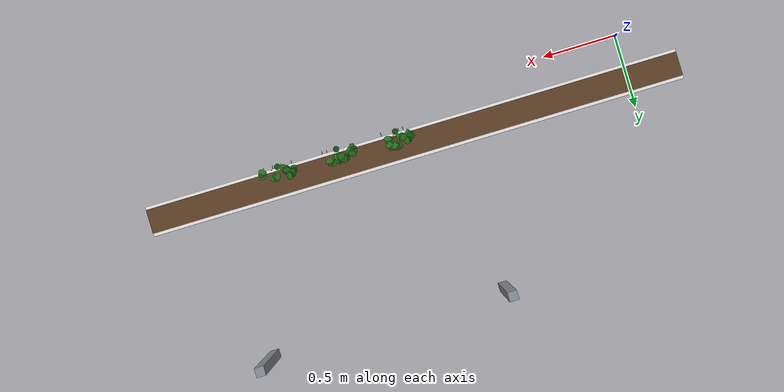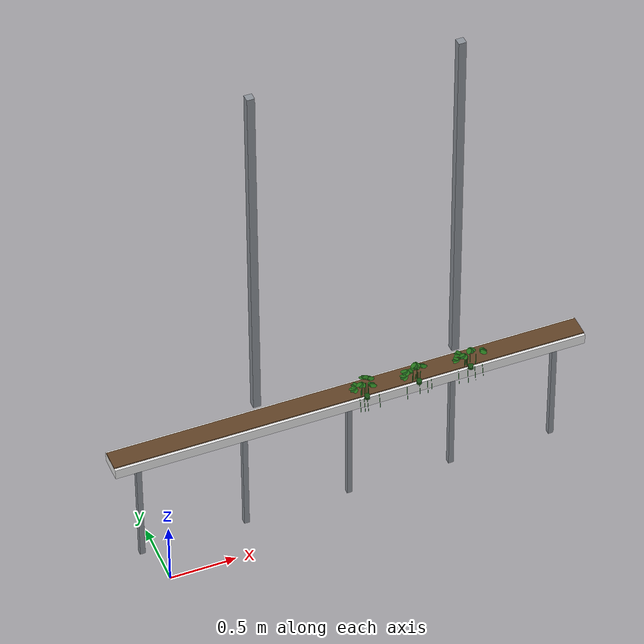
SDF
<sdf version="1.8">
 <world name="strawberry_greenhouse">
  <model name="post_1b">
   <static>true</static>
   <pose>1.2000 1.4000 1.5000 0.0000 0.0000 0.0000</pose>
   <link name="link">
    <visual name="v">
     <geometry><box><size>0.0600 0.0600 3.0000</size></box></geometry>
     <material>
      <ambient>0.550 0.570 0.600 1</ambient>
      <diffuse>0.550 0.570 0.600 1</diffuse>
      <specular>0.1 0.1 0.1 1</specular>
     </material>
    </visual>
   </link>
  </model>
  <model name="post_2b">
   <static>true</static>
   <pose>2.8000 1.4000 1.5000 0.0000 0.0000 0.0000</pose>
   <link name="link">
    <visual name="v">
     <geometry><box><size>0.0600 0.0600 3.0000</size></box></geometry>
     <material>
      <ambient>0.550 0.570 0.600 1</ambient>
      <diffuse>0.550 0.570 0.600 1</diffuse>
      <specular>0.1 0.1 0.1 1</specular>
     </material>
    </visual>
   </link>
  </model>
  <model name="gutter">
   <static>true</static>
   <pose>1.5000 0.3150 0.9600 0.0000 0.0000 0.0000</pose>
   <link name="link">
    <visual name="gutter">
     <geometry><box><size>3.6000 0.2000 0.0800</size></box></geometry>
     <material>
      <ambient>0.920 0.920 0.920 1</ambient>
      <diffuse>0.920 0.920 0.920 1</diffuse>
      <specular>0.1 0.1 0.1 1</specular>
     </material>
    </visual>
    <collision name="gutter_collision">
     <geometry><box><size>3.6000 0.2000 0.0800</size></box></geometry>
     <surface><friction><ode><mu>1.0</mu><mu2>1.0</mu2></ode></friction></surface>
    </collision>
    <visual name="substrate">
     <pose>0.0000 0.0000 0.0450 0.0000 0.0000 0.0000</pose>
     <geometry><box><size>3.6000 0.1600 0.0100</size></box></geometry>
     <material>
      <ambient>0.380 0.260 0.150 1</ambient>
      <diffuse>0.380 0.260 0.150 1</diffuse>
      <specular>0.1 0.1 0.1 1</specular>
     </material>
    </visual>
    <visual name="leg_0">
     <pose>-1.6000 0.0000 -0.5000 0.0000 0.0000 0.0000</pose>
     <geometry><box><size>0.0400 0.0400 0.9200</size></box></geometry>
     <material>
      <ambient>0.550 0.570 0.600 1</ambient>
      <diffuse>0.550 0.570 0.600 1</diffuse>
      <specular>0.1 0.1 0.1 1</specular>
     </material>
    </visual>
    <visual name="leg_1">
     <pose>-0.8000 0.0000 -0.5000 0.0000 0.0000 0.0000</pose>
     <geometry><box><size>0.0400 0.0400 0.9200</size></box></geometry>
     <material>
      <ambient>0.550 0.570 0.600 1</ambient>
      <diffuse>0.550 0.570 0.600 1</diffuse>
      <specular>0.1 0.1 0.1 1</specular>
     </material>
    </visual>
    <visual name="leg_2">
     <pose>0.0000 0.0000 -0.5000 0.0000 0.0000 0.0000</pose>
     <geometry><box><size>0.0400 0.0400 0.9200</size></box></geometry>
     <material>
      <ambient>0.550 0.570 0.600 1</ambient>
      <diffuse>0.550 0.570 0.600 1</diffuse>
      <specular>0.1 0.1 0.1 1</specular>
     </material>
    </visual>
    <visual name="leg_3">
     <pose>0.8000 0.0000 -0.5000 0.0000 0.0000 0.0000</pose>
     <geometry><box><size>0.0400 0.0400 0.9200</size></box></geometry>
     <material>
      <ambient>0.550 0.570 0.600 1</ambient>
      <diffuse>0.550 0.570 0.600 1</diffuse>
      <specular>0.1 0.1 0.1 1</specular>
     </material>
    </visual>
    <visual name="leg_4">
     <pose>1.6000 0.0000 -0.5000 0.0000 0.0000 0.0000</pose>
     <geometry><box><size>0.0400 0.0400 0.9200</size></box></geometry>
     <material>
      <ambient>0.550 0.570 0.600 1</ambient>
      <diffuse>0.550 0.570 0.600 1</diffuse>
      <specular>0.1 0.1 0.1 1</specular>
     </material>
    </visual>
   </link>
  </model>
  <model name="plant_3">
   <static>true</static>
   <pose>1.6000 0.2100 1.0200 0.0000 0.0000 0.0000</pose>
   <link name="crown">
    <inertial>
     <mass>0.3</mass>
     <inertia>
      <ixx>1.250e-04</ixx>
      <iyy>1.250e-04</iyy>
      <izz>1.250e-04</izz>
      <ixy>0</ixy>
      <ixz>0</ixz>
      <iyz>0</iyz>
     </inertia>
    </inertial>
    <visual name="crown">
     <geometry><cylinder><radius>0.0200</radius><length>0.0300</length></cylinder></geometry>
     <material>
      <ambient>0.080 0.320 0.070 1</ambient>
      <diffuse>0.080 0.320 0.070 1</diffuse>
      <specular>0.1 0.1 0.1 1</specular>
     </material>
    </visual>
    <visual name="petiole_0">
     <pose>-0.0348 0.0270 0.0298 0.0000 0.0000 0.0000</pose>
     <geometry><cylinder><radius>0.0020</radius><length>0.0595</length></cylinder></geometry>
     <material>
      <ambient>0.100 0.500 0.120 1</ambient>
      <diffuse>0.100 0.500 0.120 1</diffuse>
      <specular>0.1 0.1 0.1 1</specular>
     </material>
    </visual>
    <visual name="leaf_0_0">
     <pose>-0.0894 0.0571 0.0595 0.2000 0.1500 2.9899</pose>
     <geometry><ellipsoid><radii>0.0280 0.0180 0.0030</radii></ellipsoid></geometry>
     <material>
      <ambient>0.140 0.450 0.100 1</ambient>
      <diffuse>0.140 0.450 0.100 1</diffuse>
      <specular>0.1 0.1 0.1 1</specular>
     </material>
    </visual>
    <visual name="leaf_0_1">
     <pose>-0.0867 0.0436 0.0595 0.2000 0.1500 3.6899</pose>
     <geometry><ellipsoid><radii>0.0280 0.0180 0.0030</radii></ellipsoid></geometry>
     <material>
      <ambient>0.080 0.320 0.070 1</ambient>
      <diffuse>0.080 0.320 0.070 1</diffuse>
      <specular>0.1 0.1 0.1 1</specular>
     </material>
    </visual>
    <visual name="leaf_0_2">
     <pose>-0.0760 0.0351 0.0595 0.2000 0.1500 4.3899</pose>
     <geometry><ellipsoid><radii>0.0280 0.0180 0.0030</radii></ellipsoid></geometry>
     <material>
      <ambient>0.140 0.450 0.100 1</ambient>
      <diffuse>0.140 0.450 0.100 1</diffuse>
      <specular>0.1 0.1 0.1 1</specular>
     </material>
    </visual>
    <visual name="petiole_1">
     <pose>-0.0269 0.0287 0.0359 0.0000 0.0000 0.0000</pose>
     <geometry><cylinder><radius>0.0020</radius><length>0.0718</length></cylinder></geometry>
     <material>
      <ambient>0.100 0.500 0.120 1</ambient>
      <diffuse>0.100 0.500 0.120 1</diffuse>
      <specular>0.1 0.1 0.1 1</specular>
     </material>
    </visual>
    <visual name="leaf_1_0">
     <pose>-0.0569 0.0772 0.0718 0.2000 0.1500 1.7259</pose>
     <geometry><ellipsoid><radii>0.0280 0.0180 0.0030</radii></ellipsoid></geometry>
     <material>
      <ambient>0.140 0.450 0.100 1</ambient>
      <diffuse>0.140 0.450 0.100 1</diffuse>
      <specular>0.1 0.1 0.1 1</specular>
     </material>
    </visual>
    <visual name="leaf_1_1">
     <pose>-0.0689 0.0706 0.0718 0.2000 0.1500 2.4259</pose>
     <geometry><ellipsoid><radii>0.0280 0.0180 0.0030</radii></ellipsoid></geometry>
     <material>
      <ambient>0.080 0.320 0.070 1</ambient>
      <diffuse>0.080 0.320 0.070 1</diffuse>
      <specular>0.1 0.1 0.1 1</specular>
     </material>
    </visual>
    <visual name="leaf_1_2">
     <pose>-0.0739 0.0578 0.0718 0.2000 0.1500 3.1259</pose>
     <geometry><ellipsoid><radii>0.0280 0.0180 0.0030</radii></ellipsoid></geometry>
     <material>
      <ambient>0.140 0.450 0.100 1</ambient>
      <diffuse>0.140 0.450 0.100 1</diffuse>
      <specular>0.1 0.1 0.1 1</specular>
     </material>
    </visual>
    <visual name="petiole_2">
     <pose>0.0048 0.0379 0.0504 0.0000 0.0000 0.0000</pose>
     <geometry><cylinder><radius>0.0020</radius><length>0.1008</length></cylinder></geometry>
     <material>
      <ambient>0.100 0.500 0.120 1</ambient>
      <diffuse>0.100 0.500 0.120 1</diffuse>
      <specular>0.1 0.1 0.1 1</specular>
     </material>
    </visual>
    <visual name="leaf_2_0">
     <pose>0.0244 0.0893 0.1008 0.2000 0.1500 0.7350</pose>
     <geometry><ellipsoid><radii>0.0280 0.0180 0.0030</radii></ellipsoid></geometry>
     <material>
      <ambient>0.140 0.450 0.100 1</ambient>
      <diffuse>0.140 0.450 0.100 1</diffuse>
      <specular>0.1 0.1 0.1 1</specular>
     </material>
    </visual>
    <visual name="leaf_2_1">
     <pose>0.0123 0.0957 0.1008 0.2000 0.1500 1.4350</pose>
     <geometry><ellipsoid><radii>0.0280 0.0180 0.0030</radii></ellipsoid></geometry>
     <material>
      <ambient>0.080 0.320 0.070 1</ambient>
      <diffuse>0.080 0.320 0.070 1</diffuse>
      <specular>0.1 0.1 0.1 1</specular>
     </material>
    </visual>
    <visual name="leaf_2_2">
     <pose>-0.0011 0.0928 0.1008 0.2000 0.1500 2.1350</pose>
     <geometry><ellipsoid><radii>0.0280 0.0180 0.0030</radii></ellipsoid></geometry>
     <material>
      <ambient>0.140 0.450 0.100 1</ambient>
      <diffuse>0.140 0.450 0.100 1</diffuse>
      <specular>0.1 0.1 0.1 1</specular>
     </material>
    </visual>
    <visual name="petiole_3">
     <pose>0.0194 0.0340 0.0444 0.0000 0.0000 0.0000</pose>
     <geometry><cylinder><radius>0.0020</radius><length>0.0888</length></cylinder></geometry>
     <material>
      <ambient>0.100 0.500 0.120 1</ambient>
      <diffuse>0.100 0.500 0.120 1</diffuse>
      <specular>0.1 0.1 0.1 1</specular>
     </material>
    </visual>
    <visual name="leaf_3_0">
     <pose>0.0580 0.0738 0.0888 0.2000 0.1500 0.2957</pose>
     <geometry><ellipsoid><radii>0.0280 0.0180 0.0030</radii></ellipsoid></geometry>
     <material>
      <ambient>0.140 0.450 0.100 1</ambient>
      <diffuse>0.140 0.450 0.100 1</diffuse>
      <specular>0.1 0.1 0.1 1</specular>
     </material>
    </visual>
    <visual name="leaf_3_1">
     <pose>0.0497 0.0847 0.0888 0.2000 0.1500 0.9957</pose>
     <geometry><ellipsoid><radii>0.0280 0.0180 0.0030</radii></ellipsoid></geometry>
     <material>
      <ambient>0.080 0.320 0.070 1</ambient>
      <diffuse>0.080 0.320 0.070 1</diffuse>
      <specular>0.1 0.1 0.1 1</specular>
     </material>
    </visual>
    <visual name="leaf_3_2">
     <pose>0.0364 0.0878 0.0888 0.2000 0.1500 1.6957</pose>
     <geometry><ellipsoid><radii>0.0280 0.0180 0.0030</radii></ellipsoid></geometry>
     <material>
      <ambient>0.140 0.450 0.100 1</ambient>
      <diffuse>0.140 0.450 0.100 1</diffuse>
      <specular>0.1 0.1 0.1 1</specular>
     </material>
    </visual>
    <visual name="petiole_4">
     <pose>-0.0115 0.0319 0.0419 0.0000 0.0000 0.0000</pose>
     <geometry><cylinder><radius>0.0020</radius><length>0.0838</length></cylinder></geometry>
     <material>
      <ambient>0.100 0.500 0.120 1</ambient>
      <diffuse>0.100 0.500 0.120 1</diffuse>
      <specular>0.1 0.1 0.1 1</specular>
     </material>
    </visual>
    <visual name="leaf_4_0">
     <pose>-0.0407 0.0547 0.0838 0.2000 0.1500 3.6164</pose>
     <geometry><ellipsoid><radii>0.0280 0.0180 0.0030</radii></ellipsoid></geometry>
     <material>
      <ambient>0.140 0.450 0.100 1</ambient>
      <diffuse>0.140 0.450 0.100 1</diffuse>
      <specular>0.1 0.1 0.1 1</specular>
     </material>
    </visual>
    <visual name="leaf_4_1">
     <pose>-0.0306 0.0454 0.0838 0.2000 0.1500 4.3164</pose>
     <geometry><ellipsoid><radii>0.0280 0.0180 0.0030</radii></ellipsoid></geometry>
     <material>
      <ambient>0.080 0.320 0.070 1</ambient>
      <diffuse>0.080 0.320 0.070 1</diffuse>
      <specular>0.1 0.1 0.1 1</specular>
     </material>
    </visual>
    <visual name="leaf_4_2">
     <pose>-0.0169 0.0448 0.0838 0.2000 0.1500 5.0164</pose>
     <geometry><ellipsoid><radii>0.0280 0.0180 0.0030</radii></ellipsoid></geometry>
     <material>
      <ambient>0.140 0.450 0.100 1</ambient>
      <diffuse>0.140 0.450 0.100 1</diffuse>
      <specular>0.1 0.1 0.1 1</specular>
     </material>
    </visual>
    <visual name="petiole_5">
     <pose>0.0187 0.0180 0.0288 0.0000 0.0000 0.0000</pose>
     <geometry><cylinder><radius>0.0020</radius><length>0.0576</length></cylinder></geometry>
     <material>
      <ambient>0.100 0.500 0.120 1</ambient>
      <diffuse>0.100 0.500 0.120 1</diffuse>
      <specular>0.1 0.1 0.1 1</specular>
     </material>
    </visual>
    <visual name="leaf_5_0">
     <pose>0.0569 0.0319 0.0576 0.2000 0.1500 -0.2068</pose>
     <geometry><ellipsoid><radii>0.0280 0.0180 0.0030</radii></ellipsoid></geometry>
     <material>
      <ambient>0.140 0.450 0.100 1</ambient>
      <diffuse>0.140 0.450 0.100 1</diffuse>
      <specular>0.1 0.1 0.1 1</specular>
     </material>
    </visual>
    <visual name="leaf_5_1">
     <pose>0.0549 0.0455 0.0576 0.2000 0.1500 0.4932</pose>
     <geometry><ellipsoid><radii>0.0280 0.0180 0.0030</radii></ellipsoid></geometry>
     <material>
      <ambient>0.080 0.320 0.070 1</ambient>
      <diffuse>0.080 0.320 0.070 1</diffuse>
      <specular>0.1 0.1 0.1 1</specular>
     </material>
    </visual>
    <visual name="leaf_5_2">
     <pose>0.0447 0.0546 0.0576 0.2000 0.1500 1.1932</pose>
     <geometry><ellipsoid><radii>0.0280 0.0180 0.0030</radii></ellipsoid></geometry>
     <material>
      <ambient>0.140 0.450 0.100 1</ambient>
      <diffuse>0.140 0.450 0.100 1</diffuse>
      <specular>0.1 0.1 0.1 1</specular>
     </material>
    </visual>
    <visual name="peduncle_fruit_10">
     <pose>-0.0535 -0.0060 -0.0680 -0.2053 0.0000 0.0000</pose>
     <geometry><cylinder><radius>0.0015</radius><length>0.1083</length></cylinder></geometry>
     <material>
      <ambient>0.100 0.500 0.120 1</ambient>
      <diffuse>0.100 0.500 0.120 1</diffuse>
      <specular>0.1 0.1 0.1 1</specular>
     </material>
    </visual>
    <visual name="peduncle_fruit_11">
     <pose>-0.0224 -0.0075 -0.0685 -0.2294 0.0000 0.0000</pose>
     <geometry><cylinder><radius>0.0015</radius><length>0.1099</length></cylinder></geometry>
     <material>
      <ambient>0.100 0.500 0.120 1</ambient>
      <diffuse>0.100 0.500 0.120 1</diffuse>
      <specular>0.1 0.1 0.1 1</specular>
     </material>
    </visual>
    <visual name="peduncle_fruit_12">
     <pose>0.0019 -0.0077 -0.0718 -0.2199 0.0000 0.0000</pose>
     <geometry><cylinder><radius>0.0015</radius><length>0.1165</length></cylinder></geometry>
     <material>
      <ambient>0.100 0.500 0.120 1</ambient>
      <diffuse>0.100 0.500 0.120 1</diffuse>
      <specular>0.1 0.1 0.1 1</specular>
     </material>
    </visual>
    <visual name="peduncle_fruit_13">
     <pose>0.0940 -0.0077 -0.0694 -0.2299 0.0000 0.0000</pose>
     <geometry><cylinder><radius>0.0015</radius><length>0.1117</length></cylinder></geometry>
     <material>
      <ambient>0.100 0.500 0.120 1</ambient>
      <diffuse>0.100 0.500 0.120 1</diffuse>
      <specular>0.1 0.1 0.1 1</specular>
     </material>
    </visual>
   </link>
   <plugin filename="ignition-gazebo-detachable-joint-system" name="ignition::gazebo::systems::DetachableJoint">
    <parent_link>crown</parent_link>
    <child_model>fruit_10</child_model>
    <child_link>link</child_link>
    <detach_topic>/agrobot/sim/fruit_10/detach_anchor</detach_topic>
   </plugin>
   <plugin filename="ignition-gazebo-detachable-joint-system" name="ignition::gazebo::systems::DetachableJoint">
    <parent_link>crown</parent_link>
    <child_model>fruit_11</child_model>
    <child_link>link</child_link>
    <detach_topic>/agrobot/sim/fruit_11/detach_anchor</detach_topic>
   </plugin>
   <plugin filename="ignition-gazebo-detachable-joint-system" name="ignition::gazebo::systems::DetachableJoint">
    <parent_link>crown</parent_link>
    <child_model>fruit_12</child_model>
    <child_link>link</child_link>
    <detach_topic>/agrobot/sim/fruit_12/detach_anchor</detach_topic>
   </plugin>
   <plugin filename="ignition-gazebo-detachable-joint-system" name="ignition::gazebo::systems::DetachableJoint">
    <parent_link>crown</parent_link>
    <child_model>fruit_13</child_model>
    <child_link>link</child_link>
    <detach_topic>/agrobot/sim/fruit_13/detach_anchor</detach_topic>
   </plugin>
  </model>
  <model name="plant_4">
   <static>true</static>
   <pose>2.0000 0.2100 1.0200 0.0000 0.0000 0.0000</pose>
   <link name="crown">
    <inertial>
     <mass>0.3</mass>
     <inertia>
      <ixx>1.250e-04</ixx>
      <iyy>1.250e-04</iyy>
      <izz>1.250e-04</izz>
      <ixy>0</ixy>
      <ixz>0</ixz>
      <iyz>0</iyz>
     </inertia>
    </inertial>
    <visual name="crown">
     <geometry><cylinder><radius>0.0200</radius><length>0.0300</length></cylinder></geometry>
     <material>
      <ambient>0.080 0.320 0.070 1</ambient>
      <diffuse>0.080 0.320 0.070 1</diffuse>
      <specular>0.1 0.1 0.1 1</specular>
     </material>
    </visual>
    <visual name="petiole_0">
     <pose>0.0001 0.0269 0.0349 0.0000 0.0000 0.0000</pose>
     <geometry><cylinder><radius>0.0020</radius><length>0.0697</length></cylinder></geometry>
     <material>
      <ambient>0.100 0.500 0.120 1</ambient>
      <diffuse>0.100 0.500 0.120 1</diffuse>
      <specular>0.1 0.1 0.1 1</specular>
     </material>
    </visual>
    <visual name="leaf_0_0">
     <pose>0.0132 0.0691 0.0697 0.2000 0.1500 0.8649</pose>
     <geometry><ellipsoid><radii>0.0280 0.0180 0.0030</radii></ellipsoid></geometry>
     <material>
      <ambient>0.140 0.450 0.100 1</ambient>
      <diffuse>0.140 0.450 0.100 1</diffuse>
      <specular>0.1 0.1 0.1 1</specular>
     </material>
    </visual>
    <visual name="leaf_0_1">
     <pose>0.0004 0.0739 0.0697 0.2000 0.1500 1.5649</pose>
     <geometry><ellipsoid><radii>0.0280 0.0180 0.0030</radii></ellipsoid></geometry>
     <material>
      <ambient>0.080 0.320 0.070 1</ambient>
      <diffuse>0.080 0.320 0.070 1</diffuse>
      <specular>0.1 0.1 0.1 1</specular>
     </material>
    </visual>
    <visual name="leaf_0_2">
     <pose>-0.0125 0.0692 0.0697 0.2000 0.1500 2.2649</pose>
     <geometry><ellipsoid><radii>0.0280 0.0180 0.0030</radii></ellipsoid></geometry>
     <material>
      <ambient>0.140 0.450 0.100 1</ambient>
      <diffuse>0.140 0.450 0.100 1</diffuse>
      <specular>0.1 0.1 0.1 1</specular>
     </material>
    </visual>
    <visual name="petiole_1">
     <pose>-0.0435 0.0169 0.0282 0.0000 0.0000 0.0000</pose>
     <geometry><cylinder><radius>0.0020</radius><length>0.0565</length></cylinder></geometry>
     <material>
      <ambient>0.100 0.500 0.120 1</ambient>
      <diffuse>0.100 0.500 0.120 1</diffuse>
      <specular>0.1 0.1 0.1 1</specular>
     </material>
    </visual>
    <visual name="leaf_1_0">
     <pose>-0.1045 0.0434 0.0565 0.2000 0.1500 2.6364</pose>
     <geometry><ellipsoid><radii>0.0280 0.0180 0.0030</radii></ellipsoid></geometry>
     <material>
      <ambient>0.140 0.450 0.100 1</ambient>
      <diffuse>0.140 0.450 0.100 1</diffuse>
      <specular>0.1 0.1 0.1 1</specular>
     </material>
    </visual>
    <visual name="leaf_1_1">
     <pose>-0.1066 0.0299 0.0565 0.2000 0.1500 3.3364</pose>
     <geometry><ellipsoid><radii>0.0280 0.0180 0.0030</radii></ellipsoid></geometry>
     <material>
      <ambient>0.080 0.320 0.070 1</ambient>
      <diffuse>0.080 0.320 0.070 1</diffuse>
      <specular>0.1 0.1 0.1 1</specular>
     </material>
    </visual>
    <visual name="leaf_1_2">
     <pose>-0.0995 0.0181 0.0565 0.2000 0.1500 4.0364</pose>
     <geometry><ellipsoid><radii>0.0280 0.0180 0.0030</radii></ellipsoid></geometry>
     <material>
      <ambient>0.140 0.450 0.100 1</ambient>
      <diffuse>0.140 0.450 0.100 1</diffuse>
      <specular>0.1 0.1 0.1 1</specular>
     </material>
    </visual>
    <visual name="petiole_2">
     <pose>0.0202 0.0291 0.0366 0.0000 0.0000 0.0000</pose>
     <geometry><cylinder><radius>0.0020</radius><length>0.0732</length></cylinder></geometry>
     <material>
      <ambient>0.100 0.500 0.120 1</ambient>
      <diffuse>0.100 0.500 0.120 1</diffuse>
      <specular>0.1 0.1 0.1 1</specular>
     </material>
    </visual>
    <visual name="leaf_2_0">
     <pose>0.0600 0.0616 0.0732 0.2000 0.1500 0.1696</pose>
     <geometry><ellipsoid><radii>0.0280 0.0180 0.0030</radii></ellipsoid></geometry>
     <material>
      <ambient>0.140 0.450 0.100 1</ambient>
      <diffuse>0.140 0.450 0.100 1</diffuse>
      <specular>0.1 0.1 0.1 1</specular>
     </material>
    </visual>
    <visual name="leaf_2_1">
     <pose>0.0532 0.0735 0.0732 0.2000 0.1500 0.8696</pose>
     <geometry><ellipsoid><radii>0.0280 0.0180 0.0030</radii></ellipsoid></geometry>
     <material>
      <ambient>0.080 0.320 0.070 1</ambient>
      <diffuse>0.080 0.320 0.070 1</diffuse>
      <specular>0.1 0.1 0.1 1</specular>
     </material>
    </visual>
    <visual name="leaf_2_2">
     <pose>0.0404 0.0782 0.0732 0.2000 0.1500 1.5696</pose>
     <geometry><ellipsoid><radii>0.0280 0.0180 0.0030</radii></ellipsoid></geometry>
     <material>
      <ambient>0.140 0.450 0.100 1</ambient>
      <diffuse>0.140 0.450 0.100 1</diffuse>
      <specular>0.1 0.1 0.1 1</specular>
     </material>
    </visual>
    <visual name="petiole_3">
     <pose>-0.0035 0.0363 0.0581 0.0000 0.0000 0.0000</pose>
     <geometry><cylinder><radius>0.0020</radius><length>0.1163</length></cylinder></geometry>
     <material>
      <ambient>0.100 0.500 0.120 1</ambient>
      <diffuse>0.100 0.500 0.120 1</diffuse>
      <specular>0.1 0.1 0.1 1</specular>
     </material>
    </visual>
    <visual name="leaf_3_0">
     <pose>-0.0215 0.0587 0.1163 0.2000 0.1500 3.9050</pose>
     <geometry><ellipsoid><radii>0.0280 0.0180 0.0030</radii></ellipsoid></geometry>
     <material>
      <ambient>0.140 0.450 0.100 1</ambient>
      <diffuse>0.140 0.450 0.100 1</diffuse>
      <specular>0.1 0.1 0.1 1</specular>
     </material>
    </visual>
    <visual name="leaf_3_1">
     <pose>-0.0092 0.0527 0.1163 0.2000 0.1500 4.6050</pose>
     <geometry><ellipsoid><radii>0.0280 0.0180 0.0030</radii></ellipsoid></geometry>
     <material>
      <ambient>0.080 0.320 0.070 1</ambient>
      <diffuse>0.080 0.320 0.070 1</diffuse>
      <specular>0.1 0.1 0.1 1</specular>
     </material>
    </visual>
    <visual name="leaf_3_2">
     <pose>0.0041 0.0560 0.1163 0.2000 0.1500 5.3050</pose>
     <geometry><ellipsoid><radii>0.0280 0.0180 0.0030</radii></ellipsoid></geometry>
     <material>
      <ambient>0.140 0.450 0.100 1</ambient>
      <diffuse>0.140 0.450 0.100 1</diffuse>
      <specular>0.1 0.1 0.1 1</specular>
     </material>
    </visual>
    <visual name="petiole_4">
     <pose>-0.0364 0.0284 0.0416 0.0000 0.0000 0.0000</pose>
     <geometry><cylinder><radius>0.0020</radius><length>0.0832</length></cylinder></geometry>
     <material>
      <ambient>0.100 0.500 0.120 1</ambient>
      <diffuse>0.100 0.500 0.120 1</diffuse>
      <specular>0.1 0.1 0.1 1</specular>
     </material>
    </visual>
    <visual name="leaf_4_0">
     <pose>-0.0926 0.0596 0.0832 0.2000 0.1500 3.0063</pose>
     <geometry><ellipsoid><radii>0.0280 0.0180 0.0030</radii></ellipsoid></geometry>
     <material>
      <ambient>0.140 0.450 0.100 1</ambient>
      <diffuse>0.140 0.450 0.100 1</diffuse>
      <specular>0.1 0.1 0.1 1</specular>
     </material>
    </visual>
    <visual name="leaf_4_1">
     <pose>-0.0897 0.0462 0.0832 0.2000 0.1500 3.7063</pose>
     <geometry><ellipsoid><radii>0.0280 0.0180 0.0030</radii></ellipsoid></geometry>
     <material>
      <ambient>0.080 0.320 0.070 1</ambient>
      <diffuse>0.080 0.320 0.070 1</diffuse>
      <specular>0.1 0.1 0.1 1</specular>
     </material>
    </visual>
    <visual name="leaf_4_2">
     <pose>-0.0788 0.0378 0.0832 0.2000 0.1500 4.4063</pose>
     <geometry><ellipsoid><radii>0.0280 0.0180 0.0030</radii></ellipsoid></geometry>
     <material>
      <ambient>0.140 0.450 0.100 1</ambient>
      <diffuse>0.140 0.450 0.100 1</diffuse>
      <specular>0.1 0.1 0.1 1</specular>
     </material>
    </visual>
    <visual name="petiole_5">
     <pose>-0.0174 0.0274 0.0262 0.0000 0.0000 0.0000</pose>
     <geometry><cylinder><radius>0.0020</radius><length>0.0523</length></cylinder></geometry>
     <material>
      <ambient>0.100 0.500 0.120 1</ambient>
      <diffuse>0.100 0.500 0.120 1</diffuse>
      <specular>0.1 0.1 0.1 1</specular>
     </material>
    </visual>
    <visual name="leaf_5_0">
     <pose>-0.0343 0.0747 0.0523 0.2000 0.1500 1.5461</pose>
     <geometry><ellipsoid><radii>0.0280 0.0180 0.0030</radii></ellipsoid></geometry>
     <material>
      <ambient>0.140 0.450 0.100 1</ambient>
      <diffuse>0.140 0.450 0.100 1</diffuse>
      <specular>0.1 0.1 0.1 1</specular>
     </material>
    </visual>
    <visual name="leaf_5_1">
     <pose>-0.0473 0.0703 0.0523 0.2000 0.1500 2.2461</pose>
     <geometry><ellipsoid><radii>0.0280 0.0180 0.0030</radii></ellipsoid></geometry>
     <material>
      <ambient>0.080 0.320 0.070 1</ambient>
      <diffuse>0.080 0.320 0.070 1</diffuse>
      <specular>0.1 0.1 0.1 1</specular>
     </material>
    </visual>
    <visual name="leaf_5_2">
     <pose>-0.0544 0.0586 0.0523 0.2000 0.1500 2.9461</pose>
     <geometry><ellipsoid><radii>0.0280 0.0180 0.0030</radii></ellipsoid></geometry>
     <material>
      <ambient>0.140 0.450 0.100 1</ambient>
      <diffuse>0.140 0.450 0.100 1</diffuse>
      <specular>0.1 0.1 0.1 1</specular>
     </material>
    </visual>
    <visual name="peduncle_fruit_14">
     <pose>-0.0929 -0.0040 -0.0736 -0.1525 0.0000 0.0000</pose>
     <geometry><cylinder><radius>0.0015</radius><length>0.1185</length></cylinder></geometry>
     <material>
      <ambient>0.100 0.500 0.120 1</ambient>
      <diffuse>0.100 0.500 0.120 1</diffuse>
      <specular>0.1 0.1 0.1 1</specular>
     </material>
    </visual>
    <visual name="peduncle_fruit_15">
     <pose>0.0038 -0.0044 -0.0653 -0.1848 0.0000 0.0000</pose>
     <geometry><cylinder><radius>0.0015</radius><length>0.1023</length></cylinder></geometry>
     <material>
      <ambient>0.100 0.500 0.120 1</ambient>
      <diffuse>0.100 0.500 0.120 1</diffuse>
      <specular>0.1 0.1 0.1 1</specular>
     </material>
    </visual>
    <visual name="peduncle_fruit_16">
     <pose>0.0647 -0.0043 -0.0701 -0.1679 0.0000 0.0000</pose>
     <geometry><cylinder><radius>0.0015</radius><length>0.1118</length></cylinder></geometry>
     <material>
      <ambient>0.100 0.500 0.120 1</ambient>
      <diffuse>0.100 0.500 0.120 1</diffuse>
      <specular>0.1 0.1 0.1 1</specular>
     </material>
    </visual>
    <visual name="peduncle_fruit_17">
     <pose>0.0964 -0.0045 -0.0693 -0.1735 0.0000 0.0000</pose>
     <geometry><cylinder><radius>0.0015</radius><length>0.1102</length></cylinder></geometry>
     <material>
      <ambient>0.100 0.500 0.120 1</ambient>
      <diffuse>0.100 0.500 0.120 1</diffuse>
      <specular>0.1 0.1 0.1 1</specular>
     </material>
    </visual>
   </link>
   <plugin filename="ignition-gazebo-detachable-joint-system" name="ignition::gazebo::systems::DetachableJoint">
    <parent_link>crown</parent_link>
    <child_model>fruit_14</child_model>
    <child_link>link</child_link>
    <detach_topic>/agrobot/sim/fruit_14/detach_anchor</detach_topic>
   </plugin>
   <plugin filename="ignition-gazebo-detachable-joint-system" name="ignition::gazebo::systems::DetachableJoint">
    <parent_link>crown</parent_link>
    <child_model>fruit_15</child_model>
    <child_link>link</child_link>
    <detach_topic>/agrobot/sim/fruit_15/detach_anchor</detach_topic>
   </plugin>
   <plugin filename="ignition-gazebo-detachable-joint-system" name="ignition::gazebo::systems::DetachableJoint">
    <parent_link>crown</parent_link>
    <child_model>fruit_16</child_model>
    <child_link>link</child_link>
    <detach_topic>/agrobot/sim/fruit_16/detach_anchor</detach_topic>
   </plugin>
   <plugin filename="ignition-gazebo-detachable-joint-system" name="ignition::gazebo::systems::DetachableJoint">
    <parent_link>crown</parent_link>
    <child_model>fruit_17</child_model>
    <child_link>link</child_link>
    <detach_topic>/agrobot/sim/fruit_17/detach_anchor</detach_topic>
   </plugin>
  </model>
  <model name="plant_5">
   <static>true</static>
   <pose>2.4000 0.2100 1.0200 0.0000 0.0000 0.0000</pose>
   <link name="crown">
    <inertial>
     <mass>0.3</mass>
     <inertia>
      <ixx>1.250e-04</ixx>
      <iyy>1.250e-04</iyy>
      <izz>1.250e-04</izz>
      <ixy>0</ixy>
      <ixz>0</ixz>
      <iyz>0</iyz>
     </inertia>
    </inertial>
    <visual name="crown">
     <geometry><cylinder><radius>0.0200</radius><length>0.0300</length></cylinder></geometry>
     <material>
      <ambient>0.080 0.320 0.070 1</ambient>
      <diffuse>0.080 0.320 0.070 1</diffuse>
      <specular>0.1 0.1 0.1 1</specular>
     </material>
    </visual>
    <visual name="petiole_0">
     <pose>0.0105 0.0422 0.0450 0.0000 0.0000 0.0000</pose>
     <geometry><cylinder><radius>0.0020</radius><length>0.0901</length></cylinder></geometry>
     <material>
      <ambient>0.100 0.500 0.120 1</ambient>
      <diffuse>0.100 0.500 0.120 1</diffuse>
      <specular>0.1 0.1 0.1 1</specular>
     </material>
    </visual>
    <visual name="leaf_0_0">
     <pose>0.0123 0.0663 0.0901 0.2000 0.1500 4.2671</pose>
     <geometry><ellipsoid><radii>0.0280 0.0180 0.0030</radii></ellipsoid></geometry>
     <material>
      <ambient>0.140 0.450 0.100 1</ambient>
      <diffuse>0.140 0.450 0.100 1</diffuse>
      <specular>0.1 0.1 0.1 1</specular>
     </material>
    </visual>
    <visual name="leaf_0_1">
     <pose>0.0260 0.0650 0.0901 0.2000 0.1500 4.9671</pose>
     <geometry><ellipsoid><radii>0.0280 0.0180 0.0030</radii></ellipsoid></geometry>
     <material>
      <ambient>0.080 0.320 0.070 1</ambient>
      <diffuse>0.080 0.320 0.070 1</diffuse>
      <specular>0.1 0.1 0.1 1</specular>
     </material>
    </visual>
    <visual name="leaf_0_2">
     <pose>0.0373 0.0728 0.0901 0.2000 0.1500 5.6671</pose>
     <geometry><ellipsoid><radii>0.0280 0.0180 0.0030</radii></ellipsoid></geometry>
     <material>
      <ambient>0.140 0.450 0.100 1</ambient>
      <diffuse>0.140 0.450 0.100 1</diffuse>
      <specular>0.1 0.1 0.1 1</specular>
     </material>
    </visual>
    <visual name="petiole_1">
     <pose>-0.0209 0.0267 0.0454 0.0000 0.0000 0.0000</pose>
     <geometry><cylinder><radius>0.0020</radius><length>0.0908</length></cylinder></geometry>
     <material>
      <ambient>0.100 0.500 0.120 1</ambient>
      <diffuse>0.100 0.500 0.120 1</diffuse>
      <specular>0.1 0.1 0.1 1</specular>
     </material>
    </visual>
    <visual name="leaf_1_0">
     <pose>-0.0617 0.0517 0.0908 0.2000 0.1500 3.2267</pose>
     <geometry><ellipsoid><radii>0.0280 0.0180 0.0030</radii></ellipsoid></geometry>
     <material>
      <ambient>0.140 0.450 0.100 1</ambient>
      <diffuse>0.140 0.450 0.100 1</diffuse>
      <specular>0.1 0.1 0.1 1</specular>
     </material>
    </visual>
    <visual name="leaf_1_1">
     <pose>-0.0560 0.0393 0.0908 0.2000 0.1500 3.9267</pose>
     <geometry><ellipsoid><radii>0.0280 0.0180 0.0030</radii></ellipsoid></geometry>
     <material>
      <ambient>0.080 0.320 0.070 1</ambient>
      <diffuse>0.080 0.320 0.070 1</diffuse>
      <specular>0.1 0.1 0.1 1</specular>
     </material>
    </visual>
    <visual name="leaf_1_2">
     <pose>-0.0435 0.0335 0.0908 0.2000 0.1500 4.6267</pose>
     <geometry><ellipsoid><radii>0.0280 0.0180 0.0030</radii></ellipsoid></geometry>
     <material>
      <ambient>0.140 0.450 0.100 1</ambient>
      <diffuse>0.140 0.450 0.100 1</diffuse>
      <specular>0.1 0.1 0.1 1</specular>
     </material>
    </visual>
    <visual name="petiole_2">
     <pose>-0.0171 0.0211 0.0474 0.0000 0.0000 0.0000</pose>
     <geometry><cylinder><radius>0.0020</radius><length>0.0948</length></cylinder></geometry>
     <material>
      <ambient>0.100 0.500 0.120 1</ambient>
      <diffuse>0.100 0.500 0.120 1</diffuse>
      <specular>0.1 0.1 0.1 1</specular>
     </material>
    </visual>
    <visual name="leaf_2_0">
     <pose>-0.0541 0.0426 0.0948 0.2000 0.1500 3.1256</pose>
     <geometry><ellipsoid><radii>0.0280 0.0180 0.0030</radii></ellipsoid></geometry>
     <material>
      <ambient>0.140 0.450 0.100 1</ambient>
      <diffuse>0.140 0.450 0.100 1</diffuse>
      <specular>0.1 0.1 0.1 1</specular>
     </material>
    </visual>
    <visual name="leaf_2_1">
     <pose>-0.0496 0.0296 0.0948 0.2000 0.1500 3.8256</pose>
     <geometry><ellipsoid><radii>0.0280 0.0180 0.0030</radii></ellipsoid></geometry>
     <material>
      <ambient>0.080 0.320 0.070 1</ambient>
      <diffuse>0.080 0.320 0.070 1</diffuse>
      <specular>0.1 0.1 0.1 1</specular>
     </material>
    </visual>
    <visual name="leaf_2_2">
     <pose>-0.0378 0.0226 0.0948 0.2000 0.1500 4.5256</pose>
     <geometry><ellipsoid><radii>0.0280 0.0180 0.0030</radii></ellipsoid></geometry>
     <material>
      <ambient>0.140 0.450 0.100 1</ambient>
      <diffuse>0.140 0.450 0.100 1</diffuse>
      <specular>0.1 0.1 0.1 1</specular>
     </material>
    </visual>
    <visual name="petiole_3">
     <pose>0.0420 0.0114 0.0505 0.0000 0.0000 0.0000</pose>
     <geometry><cylinder><radius>0.0020</radius><length>0.1010</length></cylinder></geometry>
     <material>
      <ambient>0.100 0.500 0.120 1</ambient>
      <diffuse>0.100 0.500 0.120 1</diffuse>
      <specular>0.1 0.1 0.1 1</specular>
     </material>
    </visual>
    <visual name="leaf_3_0">
     <pose>0.0987 0.0093 0.1010 0.2000 0.1500 5.5412</pose>
     <geometry><ellipsoid><radii>0.0280 0.0180 0.0030</radii></ellipsoid></geometry>
     <material>
      <ambient>0.140 0.450 0.100 1</ambient>
      <diffuse>0.140 0.450 0.100 1</diffuse>
      <specular>0.1 0.1 0.1 1</specular>
     </material>
    </visual>
    <visual name="leaf_3_1">
     <pose>0.1039 0.0220 0.1010 0.2000 0.1500 6.2412</pose>
     <geometry><ellipsoid><radii>0.0280 0.0180 0.0030</radii></ellipsoid></geometry>
     <material>
      <ambient>0.080 0.320 0.070 1</ambient>
      <diffuse>0.080 0.320 0.070 1</diffuse>
      <specular>0.1 0.1 0.1 1</specular>
     </material>
    </visual>
    <visual name="leaf_3_2">
     <pose>0.0997 0.0350 0.1010 0.2000 0.1500 6.9412</pose>
     <geometry><ellipsoid><radii>0.0280 0.0180 0.0030</radii></ellipsoid></geometry>
     <material>
      <ambient>0.140 0.450 0.100 1</ambient>
      <diffuse>0.140 0.450 0.100 1</diffuse>
      <specular>0.1 0.1 0.1 1</specular>
     </material>
    </visual>
    <visual name="petiole_4">
     <pose>-0.0293 0.0298 0.0453 0.0000 0.0000 0.0000</pose>
     <geometry><cylinder><radius>0.0020</radius><length>0.0907</length></cylinder></geometry>
     <material>
      <ambient>0.100 0.500 0.120 1</ambient>
      <diffuse>0.100 0.500 0.120 1</diffuse>
      <specular>0.1 0.1 0.1 1</specular>
     </material>
    </visual>
    <visual name="leaf_4_0">
     <pose>-0.0620 0.0793 0.0907 0.2000 0.1500 1.7406</pose>
     <geometry><ellipsoid><radii>0.0280 0.0180 0.0030</radii></ellipsoid></geometry>
     <material>
      <ambient>0.140 0.450 0.100 1</ambient>
      <diffuse>0.140 0.450 0.100 1</diffuse>
      <specular>0.1 0.1 0.1 1</specular>
     </material>
    </visual>
    <visual name="leaf_4_1">
     <pose>-0.0739 0.0725 0.0907 0.2000 0.1500 2.4406</pose>
     <geometry><ellipsoid><radii>0.0280 0.0180 0.0030</radii></ellipsoid></geometry>
     <material>
      <ambient>0.080 0.320 0.070 1</ambient>
      <diffuse>0.080 0.320 0.070 1</diffuse>
      <specular>0.1 0.1 0.1 1</specular>
     </material>
    </visual>
    <visual name="leaf_4_2">
     <pose>-0.0787 0.0596 0.0907 0.2000 0.1500 3.1406</pose>
     <geometry><ellipsoid><radii>0.0280 0.0180 0.0030</radii></ellipsoid></geometry>
     <material>
      <ambient>0.140 0.450 0.100 1</ambient>
      <diffuse>0.140 0.450 0.100 1</diffuse>
      <specular>0.1 0.1 0.1 1</specular>
     </material>
    </visual>
    <visual name="petiole_5">
     <pose>-0.0381 0.0220 0.0279 0.0000 0.0000 0.0000</pose>
     <geometry><cylinder><radius>0.0020</radius><length>0.0559</length></cylinder></geometry>
     <material>
      <ambient>0.100 0.500 0.120 1</ambient>
      <diffuse>0.100 0.500 0.120 1</diffuse>
      <specular>0.1 0.1 0.1 1</specular>
     </material>
    </visual>
    <visual name="leaf_5_0">
     <pose>-0.0858 0.0615 0.0559 0.2000 0.1500 2.0679</pose>
     <geometry><ellipsoid><radii>0.0280 0.0180 0.0030</radii></ellipsoid></geometry>
     <material>
      <ambient>0.140 0.450 0.100 1</ambient>
      <diffuse>0.140 0.450 0.100 1</diffuse>
      <specular>0.1 0.1 0.1 1</specular>
     </material>
    </visual>
    <visual name="leaf_5_1">
     <pose>-0.0949 0.0512 0.0559 0.2000 0.1500 2.7679</pose>
     <geometry><ellipsoid><radii>0.0280 0.0180 0.0030</radii></ellipsoid></geometry>
     <material>
      <ambient>0.080 0.320 0.070 1</ambient>
      <diffuse>0.080 0.320 0.070 1</diffuse>
      <specular>0.1 0.1 0.1 1</specular>
     </material>
    </visual>
    <visual name="leaf_5_2">
     <pose>-0.0952 0.0375 0.0559 0.2000 0.1500 3.4679</pose>
     <geometry><ellipsoid><radii>0.0280 0.0180 0.0030</radii></ellipsoid></geometry>
     <material>
      <ambient>0.140 0.450 0.100 1</ambient>
      <diffuse>0.140 0.450 0.100 1</diffuse>
      <specular>0.1 0.1 0.1 1</specular>
     </material>
    </visual>
    <visual name="peduncle_fruit_18">
     <pose>-0.0943 -0.0052 -0.0683 -0.1893 0.0000 0.0000</pose>
     <geometry><cylinder><radius>0.0015</radius><length>0.1085</length></cylinder></geometry>
     <material>
      <ambient>0.100 0.500 0.120 1</ambient>
      <diffuse>0.100 0.500 0.120 1</diffuse>
      <specular>0.1 0.1 0.1 1</specular>
     </material>
    </visual>
    <visual name="peduncle_fruit_19">
     <pose>-0.0233 -0.0070 -0.0744 -0.1991 0.0000 0.0000</pose>
     <geometry><cylinder><radius>0.0015</radius><length>0.1211</length></cylinder></geometry>
     <material>
      <ambient>0.100 0.500 0.120 1</ambient>
      <diffuse>0.100 0.500 0.120 1</diffuse>
      <specular>0.1 0.1 0.1 1</specular>
     </material>
    </visual>
    <visual name="peduncle_fruit_20">
     <pose>0.0329 -0.0072 -0.0724 -0.2093 0.0000 0.0000</pose>
     <geometry><cylinder><radius>0.0015</radius><length>0.1173</length></cylinder></geometry>
     <material>
      <ambient>0.100 0.500 0.120 1</ambient>
      <diffuse>0.100 0.500 0.120 1</diffuse>
      <specular>0.1 0.1 0.1 1</specular>
     </material>
    </visual>
    <visual name="peduncle_fruit_21">
     <pose>0.0926 -0.0062 -0.0634 -0.2282 0.0000 0.0000</pose>
     <geometry><cylinder><radius>0.0015</radius><length>0.0993</length></cylinder></geometry>
     <material>
      <ambient>0.100 0.500 0.120 1</ambient>
      <diffuse>0.100 0.500 0.120 1</diffuse>
      <specular>0.1 0.1 0.1 1</specular>
     </material>
    </visual>
   </link>
   <plugin filename="ignition-gazebo-detachable-joint-system" name="ignition::gazebo::systems::DetachableJoint">
    <parent_link>crown</parent_link>
    <child_model>fruit_18</child_model>
    <child_link>link</child_link>
    <detach_topic>/agrobot/sim/fruit_18/detach_anchor</detach_topic>
   </plugin>
   <plugin filename="ignition-gazebo-detachable-joint-system" name="ignition::gazebo::systems::DetachableJoint">
    <parent_link>crown</parent_link>
    <child_model>fruit_19</child_model>
    <child_link>link</child_link>
    <detach_topic>/agrobot/sim/fruit_19/detach_anchor</detach_topic>
   </plugin>
   <plugin filename="ignition-gazebo-detachable-joint-system" name="ignition::gazebo::systems::DetachableJoint">
    <parent_link>crown</parent_link>
    <child_model>fruit_20</child_model>
    <child_link>link</child_link>
    <detach_topic>/agrobot/sim/fruit_20/detach_anchor</detach_topic>
   </plugin>
   <plugin filename="ignition-gazebo-detachable-joint-system" name="ignition::gazebo::systems::DetachableJoint">
    <parent_link>crown</parent_link>
    <child_model>fruit_21</child_model>
    <child_link>link</child_link>
    <detach_topic>/agrobot/sim/fruit_21/detach_anchor</detach_topic>
   </plugin>
  </model>
 </world>
</sdf>
